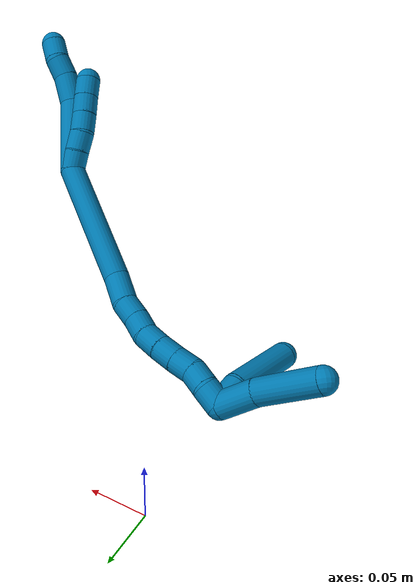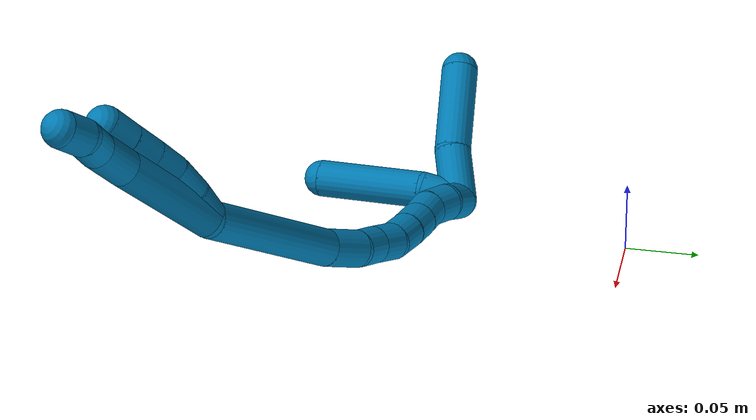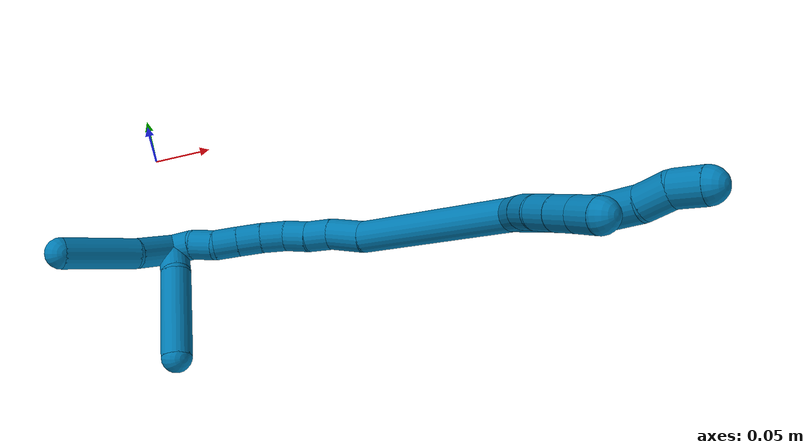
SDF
<sdf version="1.7">
 <world name="default">
  <model name="9">
   <static>0</static>
   <link name="9">
    <collision name="collision-cylinder-e_1_2_8">
     <pose>-0.002711 0.000342 0.038216 -0.008938 -0.070809 0.000317</pose>
     <geometry><cylinder><radius>0.0125</radius><length>0.076627</length></cylinder></geometry>
     <surface>
      <friction><ode><mu>1.16</mu><mu2>1.16</mu2><slip1>0</slip1><slip2>0</slip2></ode></friction>
      <contact><ode><kp>1e+06</kp><kd>1</kd><max_vel>0</max_vel><min_depth>0.001</min_depth></ode></contact>
     </surface>
    </collision>
    <visual name="visual-cylinder-e_1_2_8">
     <pose>-0.002711 0.000342 0.038216 -0.008938 -0.070809 0.000317</pose>
     <geometry><cylinder><radius>0.0125</radius><length>0.076627</length></cylinder></geometry>
     <material><ambient>0 0.490196 0.709804 1</ambient></material>
    </visual>
    <collision name="collision-cylinder-e_2_8_9">
     <pose>-0.003771 0.003148 0.091694 -0.160146 0.10634 -0.008541</pose>
     <geometry><cylinder><radius>0.0125</radius><length>0.031096</length></cylinder></geometry>
     <surface>
      <friction><ode><mu>1.16</mu><mu2>1.16</mu2><slip1>0</slip1><slip2>0</slip2></ode></friction>
      <contact><ode><kp>1e+06</kp><kd>1</kd><max_vel>0</max_vel><min_depth>0.001</min_depth></ode></contact>
     </surface>
    </collision>
    <visual name="visual-cylinder-e_2_8_9">
     <pose>-0.003771 0.003148 0.091694 -0.160146 0.10634 -0.008541</pose>
     <geometry><cylinder><radius>0.0125</radius><length>0.031096</length></cylinder></geometry>
     <material><ambient>0 0.490196 0.709804 1</ambient></material>
    </visual>
    <collision name="collision-cylinder-e_3_9_10">
     <pose>0.000401 0.009055 0.11658 -0.343364 0.24191 -0.042144</pose>
     <geometry><cylinder><radius>0.0125</radius><length>0.021056</length></cylinder></geometry>
     <surface>
      <friction><ode><mu>1.16</mu><mu2>1.16</mu2><slip1>0</slip1><slip2>0</slip2></ode></friction>
      <contact><ode><kp>1e+06</kp><kd>1</kd><max_vel>0</max_vel><min_depth>0.001</min_depth></ode></contact>
     </surface>
    </collision>
    <visual name="visual-cylinder-e_3_9_10">
     <pose>0.000401 0.009055 0.11658 -0.343364 0.24191 -0.042144</pose>
     <geometry><cylinder><radius>0.0125</radius><length>0.021056</length></cylinder></geometry>
     <material><ambient>0 0.490196 0.709804 1</ambient></material>
    </visual>
    <collision name="collision-cylinder-e_4_10_6">
     <pose>0.004558 0.012586 0.136689 -0.008613 0.15465 -0.000667</pose>
     <geometry><cylinder><radius>0.0125</radius><length>0.021222</length></cylinder></geometry>
     <surface>
      <friction><ode><mu>1.16</mu><mu2>1.16</mu2><slip1>0</slip1><slip2>0</slip2></ode></friction>
      <contact><ode><kp>1e+06</kp><kd>1</kd><max_vel>0</max_vel><min_depth>0.001</min_depth></ode></contact>
     </surface>
    </collision>
    <visual name="visual-cylinder-e_4_10_6">
     <pose>0.004558 0.012586 0.136689 -0.008613 0.15465 -0.000667</pose>
     <geometry><cylinder><radius>0.0125</radius><length>0.021222</length></cylinder></geometry>
     <material><ambient>0 0.490196 0.709804 1</ambient></material>
    </visual>
    <collision name="collision-cylinder-e_1_2_11">
     <pose>-0.004068 0.00208 0.008896 -0.229658 -0.418896 0.049023</pose>
     <geometry><cylinder><radius>0.0125</radius><length>0.02</length></cylinder></geometry>
     <surface>
      <friction><ode><mu>1.16</mu><mu2>1.16</mu2><slip1>0</slip1><slip2>0</slip2></ode></friction>
      <contact><ode><kp>1e+06</kp><kd>1</kd><max_vel>0</max_vel><min_depth>0.001</min_depth></ode></contact>
     </surface>
    </collision>
    <visual name="visual-cylinder-e_1_2_11">
     <pose>-0.004068 0.00208 0.008896 -0.229658 -0.418896 0.049023</pose>
     <geometry><cylinder><radius>0.0125</radius><length>0.02</length></cylinder></geometry>
     <material><ambient>0 0.490196 0.709804 1</ambient></material>
    </visual>
    <collision name="collision-cylinder-e_2_11_12">
     <pose>-0.012205 0.005224 0.026863 -0.116792 -0.419184 0.024871</pose>
     <geometry><cylinder><radius>0.0125</radius><length>0.02</length></cylinder></geometry>
     <surface>
      <friction><ode><mu>1.16</mu><mu2>1.16</mu2><slip1>0</slip1><slip2>0</slip2></ode></friction>
      <contact><ode><kp>1e+06</kp><kd>1</kd><max_vel>0</max_vel><min_depth>0.001</min_depth></ode></contact>
     </surface>
    </collision>
    <visual name="visual-cylinder-e_2_11_12">
     <pose>-0.012205 0.005224 0.026863 -0.116792 -0.419184 0.024871</pose>
     <geometry><cylinder><radius>0.0125</radius><length>0.02</length></cylinder></geometry>
     <material><ambient>0 0.490196 0.709804 1</ambient></material>
    </visual>
    <collision name="collision-cylinder-e_3_12_13">
     <pose>-0.018391 0.006455 0.045707 -0.017129 -0.213183 0.001833</pose>
     <geometry><cylinder><radius>0.0125</radius><length>0.02</length></cylinder></geometry>
     <surface>
      <friction><ode><mu>1.16</mu><mu2>1.16</mu2><slip1>0</slip1><slip2>0</slip2></ode></friction>
      <contact><ode><kp>1e+06</kp><kd>1</kd><max_vel>0</max_vel><min_depth>0.001</min_depth></ode></contact>
     </surface>
    </collision>
    <visual name="visual-cylinder-e_3_12_13">
     <pose>-0.018391 0.006455 0.045707 -0.017129 -0.213183 0.001833</pose>
     <geometry><cylinder><radius>0.0125</radius><length>0.02</length></cylinder></geometry>
     <material><ambient>0 0.490196 0.709804 1</ambient></material>
    </visual>
    <collision name="collision-cylinder-e_4_13_14">
     <pose>-0.02225 0.006699 0.065326 -0.007772 -0.175234 0.000683</pose>
     <geometry><cylinder><radius>0.0125</radius><length>0.02</length></cylinder></geometry>
     <surface>
      <friction><ode><mu>1.16</mu><mu2>1.16</mu2><slip1>0</slip1><slip2>0</slip2></ode></friction>
      <contact><ode><kp>1e+06</kp><kd>1</kd><max_vel>0</max_vel><min_depth>0.001</min_depth></ode></contact>
     </surface>
    </collision>
    <visual name="visual-cylinder-e_4_13_14">
     <pose>-0.02225 0.006699 0.065326 -0.007772 -0.175234 0.000683</pose>
     <geometry><cylinder><radius>0.0125</radius><length>0.02</length></cylinder></geometry>
     <material><ambient>0 0.490196 0.709804 1</ambient></material>
    </visual>
    <collision name="collision-cylinder-e_5_14_5">
     <pose>-0.026062 0.006787 0.084956 -0.001136 -0.208315 0.000119</pose>
     <geometry><cylinder><radius>0.0125</radius><length>0.02</length></cylinder></geometry>
     <surface>
      <friction><ode><mu>1.16</mu><mu2>1.16</mu2><slip1>0</slip1><slip2>0</slip2></ode></friction>
      <contact><ode><kp>1e+06</kp><kd>1</kd><max_vel>0</max_vel><min_depth>0.001</min_depth></ode></contact>
     </surface>
    </collision>
    <visual name="visual-cylinder-e_5_14_5">
     <pose>-0.026062 0.006787 0.084956 -0.001136 -0.208315 0.000119</pose>
     <geometry><cylinder><radius>0.0125</radius><length>0.02</length></cylinder></geometry>
     <material><ambient>0 0.490196 0.709804 1</ambient></material>
    </visual>
    <collision name="collision-cylinder-e_1_2_15">
     <pose>-0.018457 -0.001777 -0.061509 3.11272 -0.291406 -2.94544</pose>
     <geometry><cylinder><radius>0.0125</radius><length>0.128486</length></cylinder></geometry>
     <surface>
      <friction><ode><mu>1.16</mu><mu2>1.16</mu2><slip1>0</slip1><slip2>0</slip2></ode></friction>
      <contact><ode><kp>1e+06</kp><kd>1</kd><max_vel>0</max_vel><min_depth>0.001</min_depth></ode></contact>
     </surface>
    </collision>
    <visual name="visual-cylinder-e_1_2_15">
     <pose>-0.018457 -0.001777 -0.061509 3.11272 -0.291406 -2.94544</pose>
     <geometry><cylinder><radius>0.0125</radius><length>0.128486</length></cylinder></geometry>
     <material><ambient>0 0.490196 0.709804 1</ambient></material>
    </visual>
    <collision name="collision-cylinder-e_2_15_16">
     <pose>-0.041126 -0.000803 -0.137323 -2.9517 -0.281502 1.95803</pose>
     <geometry><cylinder><radius>0.0125</radius><length>0.030329</length></cylinder></geometry>
     <surface>
      <friction><ode><mu>1.16</mu><mu2>1.16</mu2><slip1>0</slip1><slip2>0</slip2></ode></friction>
      <contact><ode><kp>1e+06</kp><kd>1</kd><max_vel>0</max_vel><min_depth>0.001</min_depth></ode></contact>
     </surface>
    </collision>
    <visual name="visual-cylinder-e_2_15_16">
     <pose>-0.041126 -0.000803 -0.137323 -2.9517 -0.281502 1.95803</pose>
     <geometry><cylinder><radius>0.0125</radius><length>0.030329</length></cylinder></geometry>
     <material><ambient>0 0.490196 0.709804 1</ambient></material>
    </visual>
    <collision name="collision-cylinder-e_3_16_17">
     <pose>-0.050607 0.002718 -0.160334 -3.05315 -0.542502 2.82602</pose>
     <geometry><cylinder><radius>0.0125</radius><length>0.020409</length></cylinder></geometry>
     <surface>
      <friction><ode><mu>1.16</mu><mu2>1.16</mu2><slip1>0</slip1><slip2>0</slip2></ode></friction>
      <contact><ode><kp>1e+06</kp><kd>1</kd><max_vel>0</max_vel><min_depth>0.001</min_depth></ode></contact>
     </surface>
    </collision>
    <visual name="visual-cylinder-e_3_16_17">
     <pose>-0.050607 0.002718 -0.160334 -3.05315 -0.542502 2.82602</pose>
     <geometry><cylinder><radius>0.0125</radius><length>0.020409</length></cylinder></geometry>
     <material><ambient>0 0.490196 0.709804 1</ambient></material>
    </visual>
    <collision name="collision-cylinder-e_4_17_18">
     <pose>-0.060266 0.005439 -0.177839 -2.92362 -0.453319 2.2556</pose>
     <geometry><cylinder><radius>0.0125</radius><length>0.020051</length></cylinder></geometry>
     <surface>
      <friction><ode><mu>1.16</mu><mu2>1.16</mu2><slip1>0</slip1><slip2>0</slip2></ode></friction>
      <contact><ode><kp>1e+06</kp><kd>1</kd><max_vel>0</max_vel><min_depth>0.001</min_depth></ode></contact>
     </surface>
    </collision>
    <visual name="visual-cylinder-e_4_17_18">
     <pose>-0.060266 0.005439 -0.177839 -2.92362 -0.453319 2.2556</pose>
     <geometry><cylinder><radius>0.0125</radius><length>0.020051</length></cylinder></geometry>
     <material><ambient>0 0.490196 0.709804 1</ambient></material>
    </visual>
    <collision name="collision-cylinder-e_5_18_19">
     <pose>-0.071643 0.008986 -0.19408 -2.93012 -0.742557 2.60932</pose>
     <geometry><cylinder><radius>0.0125</radius><length>0.020662</length></cylinder></geometry>
     <surface>
      <friction><ode><mu>1.16</mu><mu2>1.16</mu2><slip1>0</slip1><slip2>0</slip2></ode></friction>
      <contact><ode><kp>1e+06</kp><kd>1</kd><max_vel>0</max_vel><min_depth>0.001</min_depth></ode></contact>
     </surface>
    </collision>
    <visual name="visual-cylinder-e_5_18_19">
     <pose>-0.071643 0.008986 -0.19408 -2.93012 -0.742557 2.60932</pose>
     <geometry><cylinder><radius>0.0125</radius><length>0.020662</length></cylinder></geometry>
     <material><ambient>0 0.490196 0.709804 1</ambient></material>
    </visual>
    <collision name="collision-cylinder-e_6_19_20">
     <pose>-0.085834 0.011624 -0.208421 -2.99181 -0.801525 2.79105</pose>
     <geometry><cylinder><radius>0.0125</radius><length>0.020061</length></cylinder></geometry>
     <surface>
      <friction><ode><mu>1.16</mu><mu2>1.16</mu2><slip1>0</slip1><slip2>0</slip2></ode></friction>
      <contact><ode><kp>1e+06</kp><kd>1</kd><max_vel>0</max_vel><min_depth>0.001</min_depth></ode></contact>
     </surface>
    </collision>
    <visual name="visual-cylinder-e_6_19_20">
     <pose>-0.085834 0.011624 -0.208421 -2.99181 -0.801525 2.79105</pose>
     <geometry><cylinder><radius>0.0125</radius><length>0.020061</length></cylinder></geometry>
     <material><ambient>0 0.490196 0.709804 1</ambient></material>
    </visual>
    <collision name="collision-cylinder-e_7_20_21">
     <pose>-0.100576 0.013675 -0.221816 -2.9875 -0.853434 2.80521</pose>
     <geometry><cylinder><radius>0.0125</radius><length>0.020001</length></cylinder></geometry>
     <surface>
      <friction><ode><mu>1.16</mu><mu2>1.16</mu2><slip1>0</slip1><slip2>0</slip2></ode></friction>
      <contact><ode><kp>1e+06</kp><kd>1</kd><max_vel>0</max_vel><min_depth>0.001</min_depth></ode></contact>
     </surface>
    </collision>
    <visual name="visual-cylinder-e_7_20_21">
     <pose>-0.100576 0.013675 -0.221816 -2.9875 -0.853434 2.80521</pose>
     <geometry><cylinder><radius>0.0125</radius><length>0.020001</length></cylinder></geometry>
     <material><ambient>0 0.490196 0.709804 1</ambient></material>
    </visual>
    <collision name="collision-cylinder-e_8_21_22">
     <pose>-0.113309 0.016849 -0.236578 -2.88538 -0.546464 2.27991</pose>
     <geometry><cylinder><radius>0.0125</radius><length>0.020002</length></cylinder></geometry>
     <surface>
      <friction><ode><mu>1.16</mu><mu2>1.16</mu2><slip1>0</slip1><slip2>0</slip2></ode></friction>
      <contact><ode><kp>1e+06</kp><kd>1</kd><max_vel>0</max_vel><min_depth>0.001</min_depth></ode></contact>
     </surface>
    </collision>
    <visual name="visual-cylinder-e_8_21_22">
     <pose>-0.113309 0.016849 -0.236578 -2.88538 -0.546464 2.27991</pose>
     <geometry><cylinder><radius>0.0125</radius><length>0.020002</length></cylinder></geometry>
     <material><ambient>0 0.490196 0.709804 1</ambient></material>
    </visual>
    <collision name="collision-cylinder-e_9_22_1">
     <pose>-0.123681 0.018649 -0.253393 3.09892 -0.543905 -2.98886</pose>
     <geometry><cylinder><radius>0.0125</radius><length>0.02</length></cylinder></geometry>
     <surface>
      <friction><ode><mu>1.16</mu><mu2>1.16</mu2><slip1>0</slip1><slip2>0</slip2></ode></friction>
      <contact><ode><kp>1e+06</kp><kd>1</kd><max_vel>0</max_vel><min_depth>0.001</min_depth></ode></contact>
     </surface>
    </collision>
    <visual name="visual-cylinder-e_9_22_1">
     <pose>-0.123681 0.018649 -0.253393 3.09892 -0.543905 -2.98886</pose>
     <geometry><cylinder><radius>0.0125</radius><length>0.02</length></cylinder></geometry>
     <material><ambient>0 0.490196 0.709804 1</ambient></material>
    </visual>
    <collision name="collision-cylinder-e_1_1_23">
     <pose>-0.146695 0.023102 -0.259231 -1.05814 -1.27028 0.813737</pose>
     <geometry><cylinder><radius>0.0125</radius><length>0.037351</length></cylinder></geometry>
     <surface>
      <friction><ode><mu>1.16</mu><mu2>1.16</mu2><slip1>0</slip1><slip2>0</slip2></ode></friction>
      <contact><ode><kp>1e+06</kp><kd>1</kd><max_vel>0</max_vel><min_depth>0.001</min_depth></ode></contact>
     </surface>
    </collision>
    <visual name="visual-cylinder-e_1_1_23">
     <pose>-0.146695 0.023102 -0.259231 -1.05814 -1.27028 0.813737</pose>
     <geometry><cylinder><radius>0.0125</radius><length>0.037351</length></cylinder></geometry>
     <material><ambient>0 0.490196 0.709804 1</ambient></material>
    </visual>
    <collision name="collision-cylinder-e_2_23_4">
     <pose>-0.193846 0.038924 -0.257456 -1.65572 -1.21045 1.29114</pose>
     <geometry><cylinder><radius>0.0125</radius><length>0.062649</length></cylinder></geometry>
     <surface>
      <friction><ode><mu>1.16</mu><mu2>1.16</mu2><slip1>0</slip1><slip2>0</slip2></ode></friction>
      <contact><ode><kp>1e+06</kp><kd>1</kd><max_vel>0</max_vel><min_depth>0.001</min_depth></ode></contact>
     </surface>
    </collision>
    <visual name="visual-cylinder-e_2_23_4">
     <pose>-0.193846 0.038924 -0.257456 -1.65572 -1.21045 1.29114</pose>
     <geometry><cylinder><radius>0.0125</radius><length>0.062649</length></cylinder></geometry>
     <material><ambient>0 0.490196 0.709804 1</ambient></material>
    </visual>
    <collision name="collision-cylinder-e_1_1_24">
     <pose>-0.135257 0.010553 -0.25369 0.752825 -0.515058 -0.207457</pose>
     <geometry><cylinder><radius>0.0125</radius><length>0.025988</length></cylinder></geometry>
     <surface>
      <friction><ode><mu>1.16</mu><mu2>1.16</mu2><slip1>0</slip1><slip2>0</slip2></ode></friction>
      <contact><ode><kp>1e+06</kp><kd>1</kd><max_vel>0</max_vel><min_depth>0.001</min_depth></ode></contact>
     </surface>
    </collision>
    <visual name="visual-cylinder-e_1_1_24">
     <pose>-0.135257 0.010553 -0.25369 0.752825 -0.515058 -0.207457</pose>
     <geometry><cylinder><radius>0.0125</radius><length>0.025988</length></cylinder></geometry>
     <material><ambient>0 0.490196 0.709804 1</ambient></material>
    </visual>
    <collision name="collision-cylinder-e_2_24_3">
     <pose>-0.160063 -0.025408 -0.230148 1.07441 -0.520566 -0.314642</pose>
     <geometry><cylinder><radius>0.0125</radius><length>0.074012</length></cylinder></geometry>
     <surface>
      <friction><ode><mu>1.16</mu><mu2>1.16</mu2><slip1>0</slip1><slip2>0</slip2></ode></friction>
      <contact><ode><kp>1e+06</kp><kd>1</kd><max_vel>0</max_vel><min_depth>0.001</min_depth></ode></contact>
     </surface>
    </collision>
    <visual name="visual-cylinder-e_2_24_3">
     <pose>-0.160063 -0.025408 -0.230148 1.07441 -0.520566 -0.314642</pose>
     <geometry><cylinder><radius>0.0125</radius><length>0.074012</length></cylinder></geometry>
     <material><ambient>0 0.490196 0.709804 1</ambient></material>
    </visual>
    <collision name="collision-sphere-3">
     <pose>-0.178469 -0.053637 -0.214858 0 -0 0</pose>
     <geometry><sphere><radius>0.0125</radius></sphere></geometry>
     <surface>
      <friction><ode><mu>1.16</mu><mu2>1.16</mu2><slip1>0</slip1><slip2>0</slip2></ode></friction>
      <contact><ode><kp>1e+06</kp><kd>1</kd><max_vel>0</max_vel><min_depth>0.001</min_depth></ode></contact>
     </surface>
    </collision>
    <visual name="visual-sphere-3">
     <pose>-0.178469 -0.053637 -0.214858 0 -0 0</pose>
     <geometry><sphere><radius>0.0125</radius></sphere></geometry>
     <material><ambient>0 0.490196 0.709804 1</ambient></material>
    </visual>
    <collision name="collision-sphere-24">
     <pose>-0.141657 0.002821 -0.245438 0 -0 0</pose>
     <geometry><sphere><radius>0.0125</radius></sphere></geometry>
     <surface>
      <friction><ode><mu>1.16</mu><mu2>1.16</mu2><slip1>0</slip1><slip2>0</slip2></ode></friction>
      <contact><ode><kp>1e+06</kp><kd>1</kd><max_vel>0</max_vel><min_depth>0.001</min_depth></ode></contact>
     </surface>
    </collision>
    <visual name="visual-sphere-24">
     <pose>-0.141657 0.002821 -0.245438 0 -0 0</pose>
     <geometry><sphere><radius>0.0125</radius></sphere></geometry>
     <material><ambient>0 0.490196 0.709804 1</ambient></material>
    </visual>
    <collision name="collision-sphere-4">
     <pose>-0.223159 0.049929 -0.258393 0 -0 0</pose>
     <geometry><sphere><radius>0.0125</radius></sphere></geometry>
     <surface>
      <friction><ode><mu>1.16</mu><mu2>1.16</mu2><slip1>0</slip1><slip2>0</slip2></ode></friction>
      <contact><ode><kp>1e+06</kp><kd>1</kd><max_vel>0</max_vel><min_depth>0.001</min_depth></ode></contact>
     </surface>
    </collision>
    <visual name="visual-sphere-4">
     <pose>-0.223159 0.049929 -0.258393 0 -0 0</pose>
     <geometry><sphere><radius>0.0125</radius></sphere></geometry>
     <material><ambient>0 0.490196 0.709804 1</ambient></material>
    </visual>
    <collision name="collision-sphere-23">
     <pose>-0.164533 0.027919 -0.256519 0 -0 0</pose>
     <geometry><sphere><radius>0.0125</radius></sphere></geometry>
     <surface>
      <friction><ode><mu>1.16</mu><mu2>1.16</mu2><slip1>0</slip1><slip2>0</slip2></ode></friction>
      <contact><ode><kp>1e+06</kp><kd>1</kd><max_vel>0</max_vel><min_depth>0.001</min_depth></ode></contact>
     </surface>
    </collision>
    <visual name="visual-sphere-23">
     <pose>-0.164533 0.027919 -0.256519 0 -0 0</pose>
     <geometry><sphere><radius>0.0125</radius></sphere></geometry>
     <material><ambient>0 0.490196 0.709804 1</ambient></material>
    </visual>
    <collision name="collision-sphere-1">
     <pose>-0.128856 0.018284 -0.261942 0 -0 0</pose>
     <geometry><sphere><radius>0.0125</radius></sphere></geometry>
     <surface>
      <friction><ode><mu>1.16</mu><mu2>1.16</mu2><slip1>0</slip1><slip2>0</slip2></ode></friction>
      <contact><ode><kp>1e+06</kp><kd>1</kd><max_vel>0</max_vel><min_depth>0.001</min_depth></ode></contact>
     </surface>
    </collision>
    <visual name="visual-sphere-1">
     <pose>-0.128856 0.018284 -0.261942 0 -0 0</pose>
     <geometry><sphere><radius>0.0125</radius></sphere></geometry>
     <material><ambient>0 0.490196 0.709804 1</ambient></material>
    </visual>
    <collision name="collision-sphere-22">
     <pose>-0.118506 0.019014 -0.244844 0 -0 0</pose>
     <geometry><sphere><radius>0.0125</radius></sphere></geometry>
     <surface>
      <friction><ode><mu>1.16</mu><mu2>1.16</mu2><slip1>0</slip1><slip2>0</slip2></ode></friction>
      <contact><ode><kp>1e+06</kp><kd>1</kd><max_vel>0</max_vel><min_depth>0.001</min_depth></ode></contact>
     </surface>
    </collision>
    <visual name="visual-sphere-22">
     <pose>-0.118506 0.019014 -0.244844 0 -0 0</pose>
     <geometry><sphere><radius>0.0125</radius></sphere></geometry>
     <material><ambient>0 0.490196 0.709804 1</ambient></material>
    </visual>
    <collision name="collision-sphere-21">
     <pose>-0.108112 0.014684 -0.228313 0 -0 0</pose>
     <geometry><sphere><radius>0.0125</radius></sphere></geometry>
     <surface>
      <friction><ode><mu>1.16</mu><mu2>1.16</mu2><slip1>0</slip1><slip2>0</slip2></ode></friction>
      <contact><ode><kp>1e+06</kp><kd>1</kd><max_vel>0</max_vel><min_depth>0.001</min_depth></ode></contact>
     </surface>
    </collision>
    <visual name="visual-sphere-21">
     <pose>-0.108112 0.014684 -0.228313 0 -0 0</pose>
     <geometry><sphere><radius>0.0125</radius></sphere></geometry>
     <material><ambient>0 0.490196 0.709804 1</ambient></material>
    </visual>
    <collision name="collision-sphere-11">
     <pose>-0.008135 0.004159 0.017791 0 -0 0</pose>
     <geometry><sphere><radius>0.0125</radius></sphere></geometry>
     <surface>
      <friction><ode><mu>1.16</mu><mu2>1.16</mu2><slip1>0</slip1><slip2>0</slip2></ode></friction>
      <contact><ode><kp>1e+06</kp><kd>1</kd><max_vel>0</max_vel><min_depth>0.001</min_depth></ode></contact>
     </surface>
    </collision>
    <visual name="visual-sphere-11">
     <pose>-0.008135 0.004159 0.017791 0 -0 0</pose>
     <geometry><sphere><radius>0.0125</radius></sphere></geometry>
     <material><ambient>0 0.490196 0.709804 1</ambient></material>
    </visual>
    <collision name="collision-sphere-6">
     <pose>0.006192 0.012676 0.147173 0 -0 0</pose>
     <geometry><sphere><radius>0.0125</radius></sphere></geometry>
     <surface>
      <friction><ode><mu>1.16</mu><mu2>1.16</mu2><slip1>0</slip1><slip2>0</slip2></ode></friction>
      <contact><ode><kp>1e+06</kp><kd>1</kd><max_vel>0</max_vel><min_depth>0.001</min_depth></ode></contact>
     </surface>
    </collision>
    <visual name="visual-sphere-6">
     <pose>0.006192 0.012676 0.147173 0 -0 0</pose>
     <geometry><sphere><radius>0.0125</radius></sphere></geometry>
     <material><ambient>0 0.490196 0.709804 1</ambient></material>
    </visual>
    <collision name="collision-sphere-10">
     <pose>0.002923 0.012496 0.126205 0 -0 0</pose>
     <geometry><sphere><radius>0.0125</radius></sphere></geometry>
     <surface>
      <friction><ode><mu>1.16</mu><mu2>1.16</mu2><slip1>0</slip1><slip2>0</slip2></ode></friction>
      <contact><ode><kp>1e+06</kp><kd>1</kd><max_vel>0</max_vel><min_depth>0.001</min_depth></ode></contact>
     </surface>
    </collision>
    <visual name="visual-sphere-10">
     <pose>0.002923 0.012496 0.126205 0 -0 0</pose>
     <geometry><sphere><radius>0.0125</radius></sphere></geometry>
     <material><ambient>0 0.490196 0.709804 1</ambient></material>
    </visual>
    <collision name="collision-sphere-9">
     <pose>-0.002121 0.005614 0.106956 0 -0 0</pose>
     <geometry><sphere><radius>0.0125</radius></sphere></geometry>
     <surface>
      <friction><ode><mu>1.16</mu><mu2>1.16</mu2><slip1>0</slip1><slip2>0</slip2></ode></friction>
      <contact><ode><kp>1e+06</kp><kd>1</kd><max_vel>0</max_vel><min_depth>0.001</min_depth></ode></contact>
     </surface>
    </collision>
    <visual name="visual-sphere-9">
     <pose>-0.002121 0.005614 0.106956 0 -0 0</pose>
     <geometry><sphere><radius>0.0125</radius></sphere></geometry>
     <material><ambient>0 0.490196 0.709804 1</ambient></material>
    </visual>
    <collision name="collision-sphere-2">
     <geometry><sphere><radius>0.0125</radius></sphere></geometry>
     <surface>
      <friction><ode><mu>1.16</mu><mu2>1.16</mu2><slip1>0</slip1><slip2>0</slip2></ode></friction>
      <contact><ode><kp>1e+06</kp><kd>1</kd><max_vel>0</max_vel><min_depth>0.001</min_depth></ode></contact>
     </surface>
    </collision>
    <visual name="visual-sphere-2">
     <geometry><sphere><radius>0.0125</radius></sphere></geometry>
     <material><ambient>0 0.490196 0.709804 1</ambient></material>
    </visual>
    <collision name="collision-sphere-19">
     <pose>-0.078628 0.010583 -0.201522 0 -0 0</pose>
     <geometry><sphere><radius>0.0125</radius></sphere></geometry>
     <surface>
      <friction><ode><mu>1.16</mu><mu2>1.16</mu2><slip1>0</slip1><slip2>0</slip2></ode></friction>
      <contact><ode><kp>1e+06</kp><kd>1</kd><max_vel>0</max_vel><min_depth>0.001</min_depth></ode></contact>
     </surface>
    </collision>
    <visual name="visual-sphere-19">
     <pose>-0.078628 0.010583 -0.201522 0 -0 0</pose>
     <geometry><sphere><radius>0.0125</radius></sphere></geometry>
     <material><ambient>0 0.490196 0.709804 1</ambient></material>
    </visual>
    <collision name="collision-sphere-8">
     <pose>-0.005421 0.000683 0.076432 0 -0 0</pose>
     <geometry><sphere><radius>0.0125</radius></sphere></geometry>
     <surface>
      <friction><ode><mu>1.16</mu><mu2>1.16</mu2><slip1>0</slip1><slip2>0</slip2></ode></friction>
      <contact><ode><kp>1e+06</kp><kd>1</kd><max_vel>0</max_vel><min_depth>0.001</min_depth></ode></contact>
     </surface>
    </collision>
    <visual name="visual-sphere-8">
     <pose>-0.005421 0.000683 0.076432 0 -0 0</pose>
     <geometry><sphere><radius>0.0125</radius></sphere></geometry>
     <material><ambient>0 0.490196 0.709804 1</ambient></material>
    </visual>
    <collision name="collision-sphere-12">
     <pose>-0.016275 0.006288 0.035935 0 -0 0</pose>
     <geometry><sphere><radius>0.0125</radius></sphere></geometry>
     <surface>
      <friction><ode><mu>1.16</mu><mu2>1.16</mu2><slip1>0</slip1><slip2>0</slip2></ode></friction>
      <contact><ode><kp>1e+06</kp><kd>1</kd><max_vel>0</max_vel><min_depth>0.001</min_depth></ode></contact>
     </surface>
    </collision>
    <visual name="visual-sphere-12">
     <pose>-0.016275 0.006288 0.035935 0 -0 0</pose>
     <geometry><sphere><radius>0.0125</radius></sphere></geometry>
     <material><ambient>0 0.490196 0.709804 1</ambient></material>
    </visual>
    <collision name="collision-sphere-13">
     <pose>-0.020507 0.006623 0.055479 0 -0 0</pose>
     <geometry><sphere><radius>0.0125</radius></sphere></geometry>
     <surface>
      <friction><ode><mu>1.16</mu><mu2>1.16</mu2><slip1>0</slip1><slip2>0</slip2></ode></friction>
      <contact><ode><kp>1e+06</kp><kd>1</kd><max_vel>0</max_vel><min_depth>0.001</min_depth></ode></contact>
     </surface>
    </collision>
    <visual name="visual-sphere-13">
     <pose>-0.020507 0.006623 0.055479 0 -0 0</pose>
     <geometry><sphere><radius>0.0125</radius></sphere></geometry>
     <material><ambient>0 0.490196 0.709804 1</ambient></material>
    </visual>
    <collision name="collision-sphere-14">
     <pose>-0.023994 0.006776 0.075173 0 -0 0</pose>
     <geometry><sphere><radius>0.0125</radius></sphere></geometry>
     <surface>
      <friction><ode><mu>1.16</mu><mu2>1.16</mu2><slip1>0</slip1><slip2>0</slip2></ode></friction>
      <contact><ode><kp>1e+06</kp><kd>1</kd><max_vel>0</max_vel><min_depth>0.001</min_depth></ode></contact>
     </surface>
    </collision>
    <visual name="visual-sphere-14">
     <pose>-0.023994 0.006776 0.075173 0 -0 0</pose>
     <geometry><sphere><radius>0.0125</radius></sphere></geometry>
     <material><ambient>0 0.490196 0.709804 1</ambient></material>
    </visual>
    <collision name="collision-sphere-5">
     <pose>-0.02813 0.006798 0.09474 0 -0 0</pose>
     <geometry><sphere><radius>0.0125</radius></sphere></geometry>
     <surface>
      <friction><ode><mu>1.16</mu><mu2>1.16</mu2><slip1>0</slip1><slip2>0</slip2></ode></friction>
      <contact><ode><kp>1e+06</kp><kd>1</kd><max_vel>0</max_vel><min_depth>0.001</min_depth></ode></contact>
     </surface>
    </collision>
    <visual name="visual-sphere-5">
     <pose>-0.02813 0.006798 0.09474 0 -0 0</pose>
     <geometry><sphere><radius>0.0125</radius></sphere></geometry>
     <material><ambient>0 0.490196 0.709804 1</ambient></material>
    </visual>
    <collision name="collision-sphere-15">
     <pose>-0.036914 -0.003553 -0.123017 0 -0 0</pose>
     <geometry><sphere><radius>0.0125</radius></sphere></geometry>
     <surface>
      <friction><ode><mu>1.16</mu><mu2>1.16</mu2><slip1>0</slip1><slip2>0</slip2></ode></friction>
      <contact><ode><kp>1e+06</kp><kd>1</kd><max_vel>0</max_vel><min_depth>0.001</min_depth></ode></contact>
     </surface>
    </collision>
    <visual name="visual-sphere-15">
     <pose>-0.036914 -0.003553 -0.123017 0 -0 0</pose>
     <geometry><sphere><radius>0.0125</radius></sphere></geometry>
     <material><ambient>0 0.490196 0.709804 1</ambient></material>
    </visual>
    <collision name="collision-sphere-16">
     <pose>-0.045339 0.001946 -0.151629 0 -0 0</pose>
     <geometry><sphere><radius>0.0125</radius></sphere></geometry>
     <surface>
      <friction><ode><mu>1.16</mu><mu2>1.16</mu2><slip1>0</slip1><slip2>0</slip2></ode></friction>
      <contact><ode><kp>1e+06</kp><kd>1</kd><max_vel>0</max_vel><min_depth>0.001</min_depth></ode></contact>
     </surface>
    </collision>
    <visual name="visual-sphere-16">
     <pose>-0.045339 0.001946 -0.151629 0 -0 0</pose>
     <geometry><sphere><radius>0.0125</radius></sphere></geometry>
     <material><ambient>0 0.490196 0.709804 1</ambient></material>
    </visual>
    <collision name="collision-sphere-17">
     <pose>-0.055876 0.00349 -0.169039 0 -0 0</pose>
     <geometry><sphere><radius>0.0125</radius></sphere></geometry>
     <surface>
      <friction><ode><mu>1.16</mu><mu2>1.16</mu2><slip1>0</slip1><slip2>0</slip2></ode></friction>
      <contact><ode><kp>1e+06</kp><kd>1</kd><max_vel>0</max_vel><min_depth>0.001</min_depth></ode></contact>
     </surface>
    </collision>
    <visual name="visual-sphere-17">
     <pose>-0.055876 0.00349 -0.169039 0 -0 0</pose>
     <geometry><sphere><radius>0.0125</radius></sphere></geometry>
     <material><ambient>0 0.490196 0.709804 1</ambient></material>
    </visual>
    <collision name="collision-sphere-18">
     <pose>-0.064657 0.007388 -0.186638 0 -0 0</pose>
     <geometry><sphere><radius>0.0125</radius></sphere></geometry>
     <surface>
      <friction><ode><mu>1.16</mu><mu2>1.16</mu2><slip1>0</slip1><slip2>0</slip2></ode></friction>
      <contact><ode><kp>1e+06</kp><kd>1</kd><max_vel>0</max_vel><min_depth>0.001</min_depth></ode></contact>
     </surface>
    </collision>
    <visual name="visual-sphere-18">
     <pose>-0.064657 0.007388 -0.186638 0 -0 0</pose>
     <geometry><sphere><radius>0.0125</radius></sphere></geometry>
     <material><ambient>0 0.490196 0.709804 1</ambient></material>
    </visual>
    <collision name="collision-sphere-20">
     <pose>-0.09304 0.012666 -0.21532 0 -0 0</pose>
     <geometry><sphere><radius>0.0125</radius></sphere></geometry>
     <surface>
      <friction><ode><mu>1.16</mu><mu2>1.16</mu2><slip1>0</slip1><slip2>0</slip2></ode></friction>
      <contact><ode><kp>1e+06</kp><kd>1</kd><max_vel>0</max_vel><min_depth>0.001</min_depth></ode></contact>
     </surface>
    </collision>
    <visual name="visual-sphere-20">
     <pose>-0.09304 0.012666 -0.21532 0 -0 0</pose>
     <geometry><sphere><radius>0.0125</radius></sphere></geometry>
     <material><ambient>0 0.490196 0.709804 1</ambient></material>
    </visual>
    <inertial>
     <pose>-0.067571 0.005515 -0.100003 0 -0 0</pose>
     <mass>0.75</mass>
     <inertia>
      <ixx>-0.000141</ixx>
      <ixy>0</ixy>
      <ixz>0</ixz>
      <iyy>0.000264</iyy>
      <iyz>0</iyz>
      <izz>0.000133</izz>
     </inertia>
    </inertial>
   </link>
   <pose>0.234703 -0.236636 0.14364 0.810429 0.309837 0.392089</pose>
  </model>
 </world>
</sdf>
